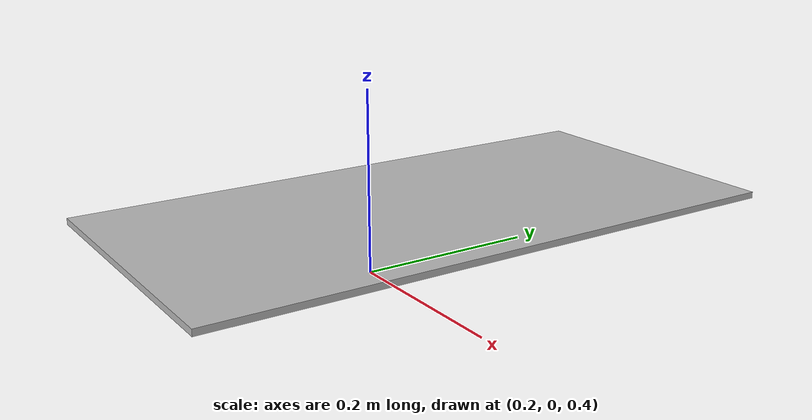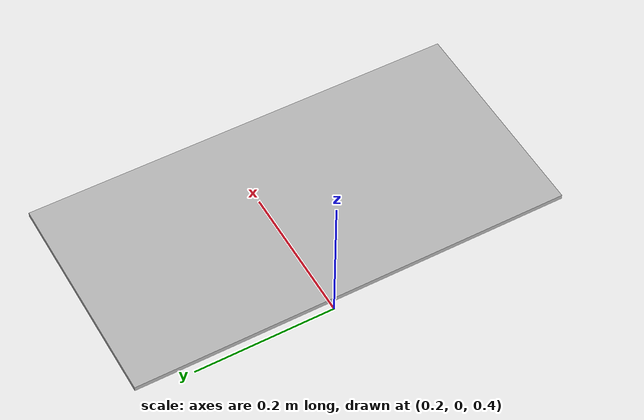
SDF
<?xml version="1.0" ?>
<sdf version="1.4">
  <world name="default">
    <include>
      <uri>model://sun</uri>
    </include>

    <model name="obs1">
      <pose>0.3 0 0.5 0 -0 0</pose>
      <static>1</static>
      <link name="link">
        <visual name="visual">
          <geometry>
            <box>
              <size>0.3 0.6 0.00635</size>
            </box>
          </geometry>
        </visual>
        <collision name='collision'>
          <laser_retro>0</laser_retro>
          <geometry>
            <box>
              <size>0.3 0.6 0.00635</size>
            </box>
          </geometry>
        </collision>
      </link>
    </model>

  </world>
</sdf>
